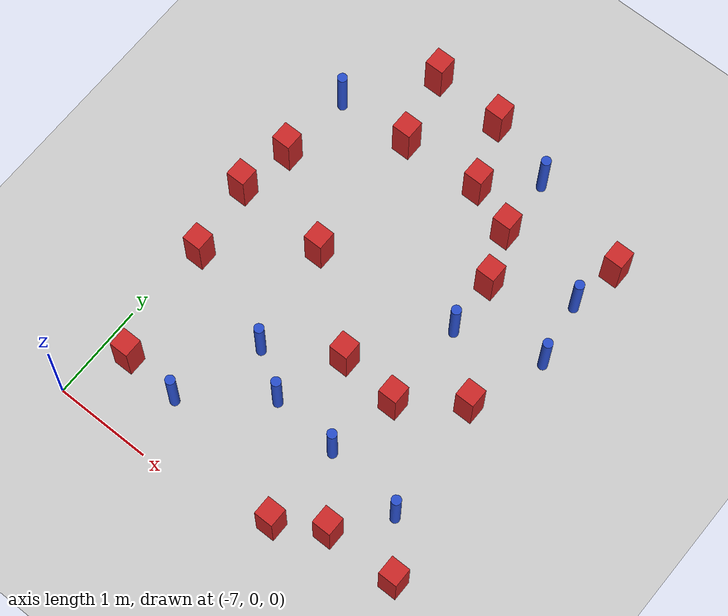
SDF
<sdf version="1.6">
 <world name="default">
  <model name="ground_plane">
   <static>1</static>
   <link name="link">
    <collision name="collision">
     <geometry><plane><normal>0 0 1</normal><size>100 100</size></plane></geometry>
     <surface><friction><ode><mu>100</mu><mu2>50</mu2></ode></friction></surface>
    </collision>
    <visual name="visual">
     <cast_shadows>0</cast_shadows>
     <geometry><plane><normal>0 0 1</normal><size>100 100</size></plane></geometry>
     <material>
      <ambient>1.0 1.0 1.0 1.0</ambient>
      <diffuse>0.8 0.8 0.8 1.0</diffuse>
      <specular>0.01 0.01 0.01 1.000000</specular>
     </material>
    </visual>
   </link>
  </model>
  <model name="square_post_obstacle11">
   <static>true</static>
   <pose>-6.88948237772 3.19168750568 8.22691968438e-08 7.2212513382e-06 -7.54495500217e-07 2.29674213826e-05</pose>
   <link name="link">
    <pose>0 0 0.25 0 -0 0</pose>
    <inertial>
     <mass>100</mass>
     <inertia>
      <ixx>0.166667</ixx>
      <ixy>0</ixy>
      <ixz>0</ixz>
      <iyy>0.166667</iyy>
      <iyz>0</iyz>
      <izz>0.166667</izz>
     </inertia>
    </inertial>
    <collision name="collision"><geometry><box><size>.2 .2 .5</size></box></geometry></collision>
    <visual name="visual">
     <geometry><box><size>.2 .2 .5</size></box></geometry>
     <material>
      <script><name>Gazebo/Red</name><uri>file://media/materials/scripts/gazebo.material</uri></script>
     </material>
    </visual>
   </link>
  </model>
  <model name="square_post_obstacle16">
   <static>true</static>
   <pose>-3.680123788 4.19438872389 8.22691968438e-08 7.2212513382e-06 -7.54495500217e-07 2.29674213826e-05</pose>
   <link name="link">
    <pose>0 0 0.25 0 -0 0</pose>
    <inertial>
     <mass>100</mass>
     <inertia>
      <ixx>0.166667</ixx>
      <ixy>0</ixy>
      <ixz>0</ixz>
      <iyy>0.166667</iyy>
      <iyz>0</iyz>
      <izz>0.166667</izz>
     </inertia>
    </inertial>
    <collision name="collision"><geometry><box><size>.2 .2 .5</size></box></geometry></collision>
    <visual name="visual">
     <geometry><box><size>.2 .2 .5</size></box></geometry>
     <material>
      <script><name>Gazebo/Red</name><uri>file://media/materials/scripts/gazebo.material</uri></script>
     </material>
    </visual>
   </link>
  </model>
  <model name="pole_obstacle29">
   <static>true</static>
   <pose>-4.64463714561 1.11420730306 2.88873142074e-08 -9.90536689445e-09 4.60219948999e-07 -1.20965994956e-07</pose>
   <link name="link">
    <pose>0 0 0.3 0 -0 0</pose>
    <inertial>
     <mass>1</mass>
     <inertia><ixx>0.145833</ixx><ixy>0</ixy><ixz>0</ixz><iyy>0.145833</iyy><iyz>0</iyz><izz>0.125</izz></inertia>
    </inertial>
    <collision name="collision">
     <geometry><cylinder><radius>0.05</radius><length>.6</length></cylinder></geometry>
    </collision>
    <visual name="visual">
     <geometry><cylinder><radius>0.05</radius><length>.6</length></cylinder></geometry>
     <material>
      <script><name>Gazebo/Blue</name><uri>file://media/materials/scripts/gazebo.material</uri></script>
     </material>
    </visual>
   </link>
  </model>
  <model name="square_post_obstacle33">
   <static>true</static>
   <pose>-3.92741275039 2.24414399379 8.22691968438e-08 7.2212513382e-06 -7.54495500217e-07 2.29674213826e-05</pose>
   <link name="link">
    <pose>0 0 0.25 0 -0 0</pose>
    <inertial>
     <mass>100</mass>
     <inertia>
      <ixx>0.166667</ixx>
      <ixy>0</ixy>
      <ixz>0</ixz>
      <iyy>0.166667</iyy>
      <iyz>0</iyz>
      <izz>0.166667</izz>
     </inertia>
    </inertial>
    <collision name="collision"><geometry><box><size>.2 .2 .5</size></box></geometry></collision>
    <visual name="visual">
     <geometry><box><size>.2 .2 .5</size></box></geometry>
     <material>
      <script><name>Gazebo/Red</name><uri>file://media/materials/scripts/gazebo.material</uri></script>
     </material>
    </visual>
   </link>
  </model>
  <model name="square_post_obstacle37">
   <static>true</static>
   <pose>-4.73279522906 3.85065306211 8.22691968438e-08 7.2212513382e-06 -7.54495500217e-07 2.29674213826e-05</pose>
   <link name="link">
    <pose>0 0 0.25 0 -0 0</pose>
    <inertial>
     <mass>100</mass>
     <inertia>
      <ixx>0.166667</ixx>
      <ixy>0</ixy>
      <ixz>0</ixz>
      <iyy>0.166667</iyy>
      <iyz>0</iyz>
      <izz>0.166667</izz>
     </inertia>
    </inertial>
    <collision name="collision"><geometry><box><size>.2 .2 .5</size></box></geometry></collision>
    <visual name="visual">
     <geometry><box><size>.2 .2 .5</size></box></geometry>
     <material>
      <script><name>Gazebo/Red</name><uri>file://media/materials/scripts/gazebo.material</uri></script>
     </material>
    </visual>
   </link>
  </model>
  <model name="pole_obstacle50">
   <static>true</static>
   <pose>-6.83363723945 3.96718415108 2.88873142074e-08 -9.9053669014e-09 4.60219948982e-07 -1.20965994965e-07</pose>
   <link name="link">
    <pose>0 0 0.3 0 -0 0</pose>
    <inertial>
     <mass>1</mass>
     <inertia><ixx>0.145833</ixx><ixy>0</ixy><ixz>0</ixz><iyy>0.145833</iyy><iyz>0</iyz><izz>0.125</izz></inertia>
    </inertial>
    <collision name="collision">
     <geometry><cylinder><radius>0.05</radius><length>.6</length></cylinder></geometry>
    </collision>
    <visual name="visual">
     <geometry><cylinder><radius>0.05</radius><length>.6</length></cylinder></geometry>
     <material>
      <script><name>Gazebo/Blue</name><uri>file://media/materials/scripts/gazebo.material</uri></script>
     </material>
    </visual>
   </link>
  </model>
  <model name="square_post_obstacle46">
   <static>true</static>
   <pose>-5.11732606859 1.87885073688 8.22691968438e-08 7.2212513382e-06 -7.54495500217e-07 2.29674213826e-05</pose>
   <link name="link">
    <pose>0 0 0.25 0 -0 0</pose>
    <inertial>
     <mass>100</mass>
     <inertia>
      <ixx>0.166667</ixx>
      <ixy>0</ixy>
      <ixz>0</ixz>
      <iyy>0.166667</iyy>
      <iyz>0</iyz>
      <izz>0.166667</izz>
     </inertia>
    </inertial>
    <collision name="collision"><geometry><box><size>.2 .2 .5</size></box></geometry></collision>
    <visual name="visual">
     <geometry><box><size>.2 .2 .5</size></box></geometry>
     <material>
      <script><name>Gazebo/Red</name><uri>file://media/materials/scripts/gazebo.material</uri></script>
     </material>
    </visual>
   </link>
  </model>
  <model name="pole_obstacle63">
   <static>true</static>
   <pose>-4.50645721522 2.76461307979 2.88873142074e-08 -9.90536690245e-09 4.6021994898e-07 -1.20965994966e-07</pose>
   <link name="link">
    <pose>0 0 0.3 0 -0 0</pose>
    <inertial>
     <mass>1</mass>
     <inertia><ixx>0.145833</ixx><ixy>0</ixy><ixz>0</ixz><iyy>0.145833</iyy><iyz>0</iyz><izz>0.125</izz></inertia>
    </inertial>
    <collision name="collision">
     <geometry><cylinder><radius>0.05</radius><length>.6</length></cylinder></geometry>
    </collision>
    <visual name="visual">
     <geometry><cylinder><radius>0.05</radius><length>.6</length></cylinder></geometry>
     <material>
      <script><name>Gazebo/Blue</name><uri>file://media/materials/scripts/gazebo.material</uri></script>
     </material>
    </visual>
   </link>
  </model>
  <model name="pole_obstacle67">
   <static>true</static>
   <pose>-6.11617109913 0.585693611447 2.88873142074e-08 -9.90536689837e-09 4.60219948989e-07 -1.2096599496e-07</pose>
   <link name="link">
    <pose>0 0 0.3 0 -0 0</pose>
    <inertial>
     <mass>1</mass>
     <inertia><ixx>0.145833</ixx><ixy>0</ixy><ixz>0</ixz><iyy>0.145833</iyy><iyz>0</iyz><izz>0.125</izz></inertia>
    </inertial>
    <collision name="collision">
     <geometry><cylinder><radius>0.05</radius><length>.6</length></cylinder></geometry>
    </collision>
    <visual name="visual">
     <geometry><cylinder><radius>0.05</radius><length>.6</length></cylinder></geometry>
     <material>
      <script><name>Gazebo/Blue</name><uri>file://media/materials/scripts/gazebo.material</uri></script>
     </material>
    </visual>
   </link>
  </model>
  <model name="square_post_obstacle56">
   <static>true</static>
   <pose>-6.98311634448 2.62640199725 8.22691968438e-08 7.2212513382e-06 -7.54495500217e-07 2.29674213826e-05</pose>
   <link name="link">
    <pose>0 0 0.25 0 -0 0</pose>
    <inertial>
     <mass>100</mass>
     <inertia>
      <ixx>0.166667</ixx>
      <ixy>0</ixy>
      <ixz>0</ixz>
      <iyy>0.166667</iyy>
      <iyz>0</iyz>
      <izz>0.166667</izz>
     </inertia>
    </inertial>
    <collision name="collision"><geometry><box><size>.2 .2 .5</size></box></geometry></collision>
    <visual name="visual">
     <geometry><box><size>.2 .2 .5</size></box></geometry>
     <material>
      <script><name>Gazebo/Red</name><uri>file://media/materials/scripts/gazebo.material</uri></script>
     </material>
    </visual>
   </link>
  </model>
  <model name="square_post_obstacle66">
   <static>true</static>
   <pose>-4.49617403517 1.82604715958 8.22691968438e-08 7.2212513382e-06 -7.54495500217e-07 2.29674213826e-05</pose>
   <link name="link">
    <pose>0 0 0.25 0 -0 0</pose>
    <inertial>
     <mass>100</mass>
     <inertia>
      <ixx>0.166667</ixx>
      <ixy>0</ixy>
      <ixz>0</ixz>
      <iyy>0.166667</iyy>
      <iyz>0</iyz>
      <izz>0.166667</izz>
     </inertia>
    </inertial>
    <collision name="collision"><geometry><box><size>.2 .2 .5</size></box></geometry></collision>
    <visual name="visual">
     <geometry><box><size>.2 .2 .5</size></box></geometry>
     <material>
      <script><name>Gazebo/Red</name><uri>file://media/materials/scripts/gazebo.material</uri></script>
     </material>
    </visual>
   </link>
  </model>
  <model name="square_post_obstacle69">
   <static>true</static>
   <pose>-5.48660990155 4.71626903176 8.22691968438e-08 7.22125133819e-06 -7.54495500217e-07 2.29674213826e-05</pose>
   <link name="link">
    <pose>0 0 0.25 0 -0 0</pose>
    <inertial>
     <mass>100</mass>
     <inertia>
      <ixx>0.166667</ixx>
      <ixy>0</ixy>
      <ixz>0</ixz>
      <iyy>0.166667</iyy>
      <iyz>0</iyz>
      <izz>0.166667</izz>
     </inertia>
    </inertial>
    <collision name="collision"><geometry><box><size>.2 .2 .5</size></box></geometry></collision>
    <visual name="visual">
     <geometry><box><size>.2 .2 .5</size></box></geometry>
     <material>
      <script><name>Gazebo/Red</name><uri>file://media/materials/scripts/gazebo.material</uri></script>
     </material>
    </visual>
   </link>
  </model>
  <model name="pole_obstacle81">
   <static>true</static>
   <pose>-5.80731462332 1.47958272403 2.88873142074e-08 -9.90536689445e-09 4.60219948999e-07 -1.20965994956e-07</pose>
   <link name="link">
    <pose>0 0 0.3 0 -0 0</pose>
    <inertial>
     <mass>1</mass>
     <inertia><ixx>0.145833</ixx><ixy>0</ixy><ixz>0</ixz><iyy>0.145833</iyy><iyz>0</iyz><izz>0.125</izz></inertia>
    </inertial>
    <collision name="collision">
     <geometry><cylinder><radius>0.05</radius><length>.6</length></cylinder></geometry>
    </collision>
    <visual name="visual">
     <geometry><cylinder><radius>0.05</radius><length>.6</length></cylinder></geometry>
     <material>
      <script><name>Gazebo/Blue</name><uri>file://media/materials/scripts/gazebo.material</uri></script>
     </material>
    </visual>
   </link>
  </model>
  <model name="square_post_obstacle86">
   <static>true</static>
   <pose>-5.99710301955 2.5825157316 8.22691968438e-08 7.2212513382e-06 -7.54495500217e-07 2.29674213826e-05</pose>
   <link name="link">
    <pose>0 0 0.25 0 -0 0</pose>
    <inertial>
     <mass>100</mass>
     <inertia>
      <ixx>0.166667</ixx>
      <ixy>0</ixy>
      <ixz>0</ixz>
      <iyy>0.166667</iyy>
      <iyz>0</iyz>
      <izz>0.166667</izz>
     </inertia>
    </inertial>
    <collision name="collision"><geometry><box><size>.2 .2 .5</size></box></geometry></collision>
    <visual name="visual">
     <geometry><box><size>.2 .2 .5</size></box></geometry>
     <material>
      <script><name>Gazebo/Red</name><uri>file://media/materials/scripts/gazebo.material</uri></script>
     </material>
    </visual>
   </link>
  </model>
  <model name="square_post_obstacle87">
   <static>true</static>
   <pose>-6.24336735413 4.74969634615 8.22691968438e-08 7.2212513382e-06 -7.54495500217e-07 2.29674213826e-05</pose>
   <link name="link">
    <pose>0 0 0.25 0 -0 0</pose>
    <inertial>
     <mass>100</mass>
     <inertia>
      <ixx>0.166667</ixx>
      <ixy>0</ixy>
      <ixz>0</ixz>
      <iyy>0.166667</iyy>
      <iyz>0</iyz>
      <izz>0.166667</izz>
     </inertia>
    </inertial>
    <collision name="collision"><geometry><box><size>.2 .2 .5</size></box></geometry></collision>
    <visual name="visual">
     <geometry><box><size>.2 .2 .5</size></box></geometry>
     <material>
      <script><name>Gazebo/Red</name><uri>file://media/materials/scripts/gazebo.material</uri></script>
     </material>
    </visual>
   </link>
  </model>
  <model name="square_post_obstacle95">
   <static>true</static>
   <pose>-6.70617805163 0.626951596238 8.22691968438e-08 7.2212513382e-06 -7.54495500217e-07 2.29674213826e-05</pose>
   <link name="link">
    <pose>0 0 0.25 0 -0 0</pose>
    <inertial>
     <mass>100</mass>
     <inertia>
      <ixx>0.166667</ixx>
      <ixy>0</ixy>
      <ixz>0</ixz>
      <iyy>0.166667</iyy>
      <iyz>0</iyz>
      <izz>0.166667</izz>
     </inertia>
    </inertial>
    <collision name="collision"><geometry><box><size>.2 .2 .5</size></box></geometry></collision>
    <visual name="visual">
     <geometry><box><size>.2 .2 .5</size></box></geometry>
     <material>
      <script><name>Gazebo/Red</name><uri>file://media/materials/scripts/gazebo.material</uri></script>
     </material>
    </visual>
   </link>
  </model>
  <model name="pole_obstacle107">
   <static>true</static>
   <pose>-5.35539447719 1.17975356388 2.88873142074e-08 -9.90536689445e-09 4.60219948999e-07 -1.20965994956e-07</pose>
   <link name="link">
    <pose>0 0 0.3 0 -0 0</pose>
    <inertial>
     <mass>1</mass>
     <inertia><ixx>0.145833</ixx><ixy>0</ixy><ixz>0</ixz><iyy>0.145833</iyy><iyz>0</iyz><izz>0.125</izz></inertia>
    </inertial>
    <collision name="collision">
     <geometry><cylinder><radius>0.05</radius><length>.6</length></cylinder></geometry>
    </collision>
    <visual name="visual">
     <geometry><cylinder><radius>0.05</radius><length>.6</length></cylinder></geometry>
     <material>
      <script><name>Gazebo/Blue</name><uri>file://media/materials/scripts/gazebo.material</uri></script>
     </material>
    </visual>
   </link>
  </model>
  <model name="square_post_obstacle116">
   <static>true</static>
   <pose>-5.22801478074 4.05010147433 8.22691968438e-08 7.22125133819e-06 -7.54495500217e-07 2.29674213826e-05</pose>
   <link name="link">
    <pose>0 0 0.25 0 -0 0</pose>
    <inertial>
     <mass>100</mass>
     <inertia>
      <ixx>0.166667</ixx>
      <ixy>0</ixy>
      <ixz>0</ixz>
      <iyy>0.166667</iyy>
      <iyz>0</iyz>
      <izz>0.166667</izz>
     </inertia>
    </inertial>
    <collision name="collision"><geometry><box><size>.2 .2 .5</size></box></geometry></collision>
    <visual name="visual">
     <geometry><box><size>.2 .2 .5</size></box></geometry>
     <material>
      <script><name>Gazebo/Red</name><uri>file://media/materials/scripts/gazebo.material</uri></script>
     </material>
    </visual>
   </link>
  </model>
  <model name="square_post_obstacle130">
   <static>true</static>
   <pose>-6.87564008628 1.85827465387 8.22691968438e-08 7.2212513382e-06 -7.54495500217e-07 2.29674213826e-05</pose>
   <link name="link">
    <pose>0 0 0.25 0 -0 0</pose>
    <inertial>
     <mass>100</mass>
     <inertia>
      <ixx>0.166667</ixx>
      <ixy>0</ixy>
      <ixz>0</ixz>
      <iyy>0.166667</iyy>
      <iyz>0</iyz>
      <izz>0.166667</izz>
     </inertia>
    </inertial>
    <collision name="collision"><geometry><box><size>.2 .2 .5</size></box></geometry></collision>
    <visual name="visual">
     <geometry><box><size>.2 .2 .5</size></box></geometry>
     <material>
      <script><name>Gazebo/Red</name><uri>file://media/materials/scripts/gazebo.material</uri></script>
     </material>
    </visual>
   </link>
  </model>
  <model name="pole_obstacle143">
   <static>true</static>
   <pose>-4.77351095038 4.49569341878 2.88873142074e-08 -9.90536690842e-09 4.60219948965e-07 -1.20965994976e-07</pose>
   <link name="link">
    <pose>0 0 0.3 0 -0 0</pose>
    <inertial>
     <mass>1</mass>
     <inertia><ixx>0.145833</ixx><ixy>0</ixy><ixz>0</ixz><iyy>0.145833</iyy><iyz>0</iyz><izz>0.125</izz></inertia>
    </inertial>
    <collision name="collision">
     <geometry><cylinder><radius>0.05</radius><length>.6</length></cylinder></geometry>
    </collision>
    <visual name="visual">
     <geometry><cylinder><radius>0.05</radius><length>.6</length></cylinder></geometry>
     <material>
      <script><name>Gazebo/Blue</name><uri>file://media/materials/scripts/gazebo.material</uri></script>
     </material>
    </visual>
   </link>
  </model>
  <model name="pole_obstacle147">
   <static>true</static>
   <pose>-3.77102022664 3.67886481235 2.88873142074e-08 -9.90536690232e-09 4.6021994898e-07 -1.20965994968e-07</pose>
   <link name="link">
    <pose>0 0 0.3 0 -0 0</pose>
    <inertial>
     <mass>1</mass>
     <inertia><ixx>0.145833</ixx><ixy>0</ixy><ixz>0</ixz><iyy>0.145833</iyy><iyz>0</iyz><izz>0.125</izz></inertia>
    </inertial>
    <collision name="collision">
     <geometry><cylinder><radius>0.05</radius><length>.6</length></cylinder></geometry>
    </collision>
    <visual name="visual">
     <geometry><cylinder><radius>0.05</radius><length>.6</length></cylinder></geometry>
     <material>
      <script><name>Gazebo/Blue</name><uri>file://media/materials/scripts/gazebo.material</uri></script>
     </material>
    </visual>
   </link>
  </model>
  <model name="square_post_obstacle142">
   <static>true</static>
   <pose>-4.53275734865 3.3375562907 8.22691968438e-08 7.2212513382e-06 -7.54495500217e-07 2.29674213826e-05</pose>
   <link name="link">
    <pose>0 0 0.25 0 -0 0</pose>
    <inertial>
     <mass>100</mass>
     <inertia>
      <ixx>0.166667</ixx>
      <ixy>0</ixy>
      <ixz>0</ixz>
      <iyy>0.166667</iyy>
      <iyz>0</iyz>
      <izz>0.166667</izz>
     </inertia>
    </inertial>
    <collision name="collision"><geometry><box><size>.2 .2 .5</size></box></geometry></collision>
    <visual name="visual">
     <geometry><box><size>.2 .2 .5</size></box></geometry>
     <material>
      <script><name>Gazebo/Red</name><uri>file://media/materials/scripts/gazebo.material</uri></script>
     </material>
    </visual>
   </link>
  </model>
  <model name="pole_obstacle157">
   <static>true</static>
   <pose>-3.65257375494 3.03381276744 2.88873142074e-08 -9.90536690232e-09 4.6021994898e-07 -1.20965994968e-07</pose>
   <link name="link">
    <pose>0 0 0.3 0 -0 0</pose>
    <inertial>
     <mass>1</mass>
     <inertia><ixx>0.145833</ixx><ixy>0</ixy><ixz>0</ixz><iyy>0.145833</iyy><iyz>0</iyz><izz>0.125</izz></inertia>
    </inertial>
    <collision name="collision">
     <geometry><cylinder><radius>0.05</radius><length>.6</length></cylinder></geometry>
    </collision>
    <visual name="visual">
     <geometry><cylinder><radius>0.05</radius><length>.6</length></cylinder></geometry>
     <material>
      <script><name>Gazebo/Blue</name><uri>file://media/materials/scripts/gazebo.material</uri></script>
     </material>
    </visual>
   </link>
  </model>
  <model name="square_post_obstacle165">
   <static>true</static>
   <pose>-4.18448421337 0.48690888947 8.22691968438e-08 7.2212513382e-06 -7.54495500217e-07 2.29674213826e-05</pose>
   <link name="link">
    <pose>0 0 0.25 0 -0 0</pose>
    <inertial>
     <mass>100</mass>
     <inertia>
      <ixx>0.166667</ixx>
      <ixy>0</ixy>
      <ixz>0</ixz>
      <iyy>0.166667</iyy>
      <iyz>0</iyz>
      <izz>0.166667</izz>
     </inertia>
    </inertial>
    <collision name="collision"><geometry><box><size>.2 .2 .5</size></box></geometry></collision>
    <visual name="visual">
     <geometry><box><size>.2 .2 .5</size></box></geometry>
     <material>
      <script><name>Gazebo/Red</name><uri>file://media/materials/scripts/gazebo.material</uri></script>
     </material>
    </visual>
   </link>
  </model>
  <model name="square_post_obstacle195">
   <static>true</static>
   <pose>-4.63778331404 0.225477972786 8.22691968438e-08 7.2212513382e-06 -7.54495500217e-07 2.29674213826e-05</pose>
   <link name="link">
    <pose>0 0 0.25 0 -0 0</pose>
    <inertial>
     <mass>100</mass>
     <inertia>
      <ixx>0.166667</ixx>
      <ixy>0</ixy>
      <ixz>0</ixz>
      <iyy>0.166667</iyy>
      <iyz>0</iyz>
      <izz>0.166667</izz>
     </inertia>
    </inertial>
    <collision name="collision"><geometry><box><size>.2 .2 .5</size></box></geometry></collision>
    <visual name="visual">
     <geometry><box><size>.2 .2 .5</size></box></geometry>
     <material>
      <script><name>Gazebo/Red</name><uri>file://media/materials/scripts/gazebo.material</uri></script>
     </material>
    </visual>
   </link>
  </model>
  <model name="square_post_obstacle200">
   <static>true</static>
   <pose>-6.06505873199 4.00905767104 8.22691968438e-08 7.22125133819e-06 -7.54495500217e-07 2.29674213826e-05</pose>
   <link name="link">
    <pose>0 0 0.25 0 -0 0</pose>
    <inertial>
     <mass>100</mass>
     <inertia>
      <ixx>0.166667</ixx>
      <ixy>0</ixy>
      <ixz>0</ixz>
      <iyy>0.166667</iyy>
      <iyz>0</iyz>
      <izz>0.166667</izz>
     </inertia>
    </inertial>
    <collision name="collision"><geometry><box><size>.2 .2 .5</size></box></geometry></collision>
    <visual name="visual">
     <geometry><box><size>.2 .2 .5</size></box></geometry>
     <material>
      <script><name>Gazebo/Red</name><uri>file://media/materials/scripts/gazebo.material</uri></script>
     </material>
    </visual>
   </link>
  </model>
  <model name="pole_obstacle204">
   <static>true</static>
   <pose>-3.80733318157 0.993251481524 2.88873142074e-08 -9.90536687568e-09 4.60219949041e-07 -1.2096599494e-07</pose>
   <link name="link">
    <pose>0 0 0.3 0 -0 0</pose>
    <inertial>
     <mass>1</mass>
     <inertia><ixx>0.145833</ixx><ixy>0</ixy><ixz>0</ixz><iyy>0.145833</iyy><iyz>0</iyz><izz>0.125</izz></inertia>
    </inertial>
    <collision name="collision">
     <geometry><cylinder><radius>0.05</radius><length>.6</length></cylinder></geometry>
    </collision>
    <visual name="visual">
     <geometry><cylinder><radius>0.05</radius><length>.6</length></cylinder></geometry>
     <material>
      <script><name>Gazebo/Blue</name><uri>file://media/materials/scripts/gazebo.material</uri></script>
     </material>
    </visual>
   </link>
  </model>
  <model name="square_post_obstacle233">
   <static>true</static>
   <pose>-3.43252996738 0.494603964659 8.22691968438e-08 7.22125133819e-06 -7.54495500217e-07 2.29674213826e-05</pose>
   <link name="link">
    <pose>0 0 0.25 0 -0 0</pose>
    <inertial>
     <mass>100</mass>
     <inertia>
      <ixx>0.166667</ixx>
      <ixy>0</ixy>
      <ixz>0</ixz>
      <iyy>0.166667</iyy>
      <iyz>0</iyz>
      <izz>0.166667</izz>
     </inertia>
    </inertial>
    <collision name="collision"><geometry><box><size>.2 .2 .5</size></box></geometry></collision>
    <visual name="visual">
     <geometry><box><size>.2 .2 .5</size></box></geometry>
     <material>
      <script><name>Gazebo/Red</name><uri>file://media/materials/scripts/gazebo.material</uri></script>
     </material>
    </visual>
   </link>
  </model>
 </world>
</sdf>
